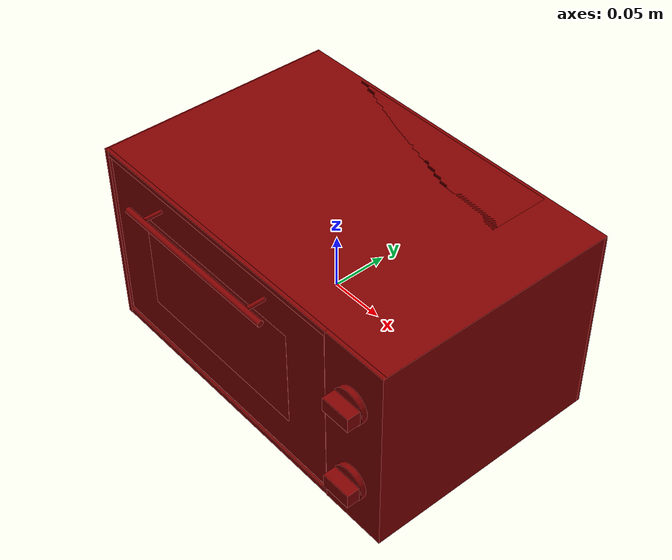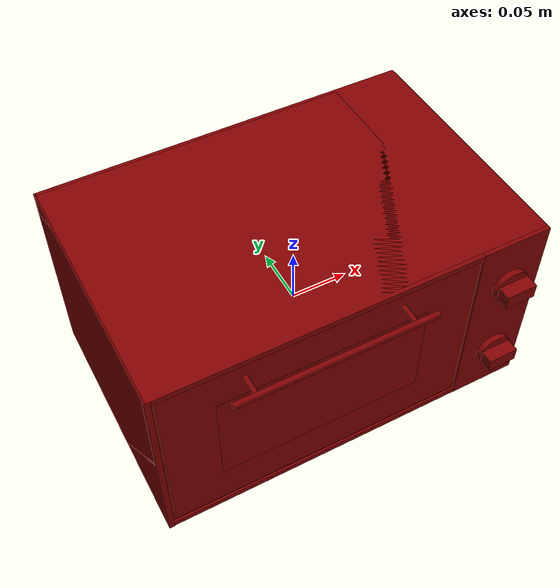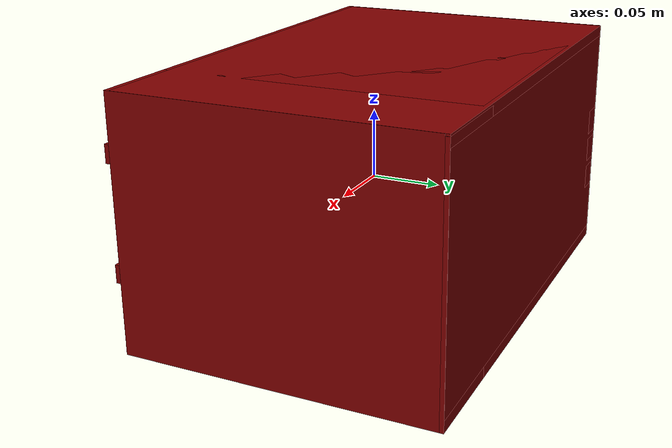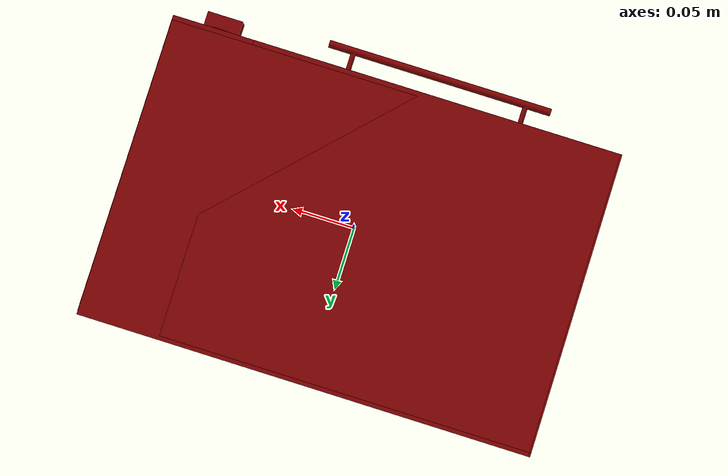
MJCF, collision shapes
<?xml version='1.0' encoding='UTF-8'?>
<mujoco model="model">
  <compiler angle="radian"/>
  <asset>
    <mesh file="visuals/Body001.obj" name="Body001_vis"/>
    <mesh file="visuals/Door001.obj" name="Door001_vis"/>
    <mesh file="visuals/Door001_Clear.obj" name="Door001_Clear_vis"/>
    <mesh file="visuals/Knob001.obj" name="Knob001_vis"/>
    <mesh file="visuals/Knob002.obj" name="Knob002_vis"/>
    <mesh file="visuals/Shelf001.obj" name="Shelf001_vis"/>
    <mesh file="visuals/Shelf002.obj" name="Shelf002_vis"/>
    <texture file="visuals/T_BC001.png" name="Body001_material" type="2d"/>
    <material name="Body001_material" rgba="1 1 1 1.0" texture="Body001_material" shininess="0.4472135901451111" specular="0.3103448502657381"/>
    <texture file="visuals/T_BC001.png" name="Door001_material" type="2d"/>
    <material name="Door001_material" rgba="1 1 1 1.0" texture="Door001_material" shininess="0.4472135901451111" specular="0.3103448502657381"/>
    <texture file="visuals/T_BC001.png" name="Door001_Clear_material" type="2d"/>
    <material name="Door001_Clear_material" rgba="1 1 1 0.699999988079071" texture="Door001_Clear_material" shininess="0.4472135901451111" specular="0.3103448502657381"/>
    <texture file="visuals/T_BC001.png" name="Knob001_material" type="2d"/>
    <material name="Knob001_material" rgba="1 1 1 1.0" texture="Knob001_material" shininess="0.4472135901451111" specular="0.3103448502657381"/>
    <texture file="visuals/T_BC001.png" name="Knob002_material" type="2d"/>
    <material name="Knob002_material" rgba="1 1 1 1.0" texture="Knob002_material" shininess="0.4472135901451111" specular="0.3103448502657381"/>
    <texture file="visuals/T_BC001.png" name="Shelf001_material" type="2d"/>
    <material name="Shelf001_material" rgba="1 1 1 1.0" texture="Shelf001_material" shininess="0.4472135901451111" specular="0.3103448502657381"/>
    <texture file="visuals/T_BC001.png" name="Shelf002_material" type="2d"/>
    <material name="Shelf002_material" rgba="1 1 1 1.0" texture="Shelf002_material" shininess="0.4472135901451111" specular="0.3103448502657381"/>
  </asset>
  <default>
    <default class="visual">
      <geom conaffinity="0" contype="0" group="1" type="mesh"/>
    </default>
    <default class="collision">
      <geom group="0" rgba="0.5 0 0 0.5"/>
    </default>
    <default class="spawn">
      <geom group="0" rgba="1 1 1 0.5" contype="0" conaffinity="0"/>
      <site group="0" rgba="1 1 1 0.5"/>
    </default>
    <default class="region">
      <geom group="1" conaffinity="0" contype="0" rgba="0 1 0 0"/>
    </default>
  </default>
  <worldbody>
    <body>
      <body name="object">
        <geom mesh="Body001_vis" type="mesh" solimp="0.998 0.998 0.001" solref="0.001 1" density="100" friction="0.95 0.3 0.1" class="visual" material="Body001_material"/>
        <geom class="collision" type="box" pos="0.0005172229721210897 0.011733900755643845 0.08691734820604324" size="0.16828076541423798 0.11101815849542618 0.005980744492262602" quat="1.0 0.0 0.0 0.0"/>
        <geom class="collision" type="box" pos="0.0005172229721210897 0.010909182950854301 -0.08161424100399017" size="0.16828112304210663 0.11184294521808624 0.006149906199425459" quat="1.0 0.0 0.0 0.0"/>
        <geom class="collision" type="box" pos="-0.16227222979068756 0.011733354069292545 0.00258427020162344" size="0.0067818136885762215 0.11101796478033066 0.09031333774328232" quat="1.0 0.0 0.0 0.0"/>
        <geom class="collision" type="box" pos="0.0005172229721210897 0.11658301204442978 0.002612464129924774" size="0.16828185319900513 0.006169580854475498 0.08218231797218323" quat="1.0 0.0 0.0 0.0"/>
        <geom class="collision" type="box" pos="0.13432499766349792 0.011733589693903923 0.001870125182904303" size="0.03472891449928284 0.11101856827735901 0.08959954977035522" quat="1.0 0.0 0.0 0.0"/>
        <geom class="collision" type="box" pos="0.10413810610771179 0.011733400635421276 -0.007304775528609753" size="0.00981373805552721 0.11101856827735901 0.00942980870604515" quat="1.0 0.0 0.0 0.0"/>
        <geom class="collision" type="box" pos="0.10373619198799133 0.011733400635421276 -0.030886605381965637" size="0.00917659793049097 0.11101873219013214 0.009429818950593472" quat="1.0 0.0 0.0 0.0"/>
        <geom class="collision" type="box" pos="0.10413810610771179 0.011733400635421276 0.0160503052175045" size="0.009813782759010792 0.11101892590522766 0.009429831057786942" quat="1.0 0.0 0.0 0.0"/>
        <geom class="collision" type="box" pos="0.10413810610771179 0.011733400635421276 0.03679776191711426" size="0.009813805110752583 0.11101909726858139 0.007049001287668943" quat="1.0 0.0 0.0 0.0"/>
        <geom class="collision" type="box" pos="-0.159526064991951 0.01173335313796997 0.03679777681827545" size="0.008752795867621899 0.11101923882961273 0.007048996165394783" quat="1.0 0.0 0.0 0.0"/>
        <geom class="collision" type="box" pos="-0.159526064991951 0.01173335313796997 0.0160503052175045" size="0.008752807043492794 0.11101941019296646 0.009429864585399628" quat="1.0 0.0 0.0 0.0"/>
        <geom class="collision" type="box" pos="-0.15914511680603027 0.01173335313796997 -0.030886605381965637" size="0.008115467615425587 0.11101960390806198 0.009429876692593098" quat="1.0 0.0 0.0 0.0"/>
        <geom class="collision" type="box" pos="-0.159526064991951 0.01173335313796997 -0.007304775528609753" size="0.008752829395234585 0.11101976782083511 0.009429886937141418" quat="1.0 0.0 0.0 0.0"/>
        <geom class="collision" type="cylinder" pos="-0.14149688184261322 -0.0778157040476799 -0.08931057900190353" size="0.011068589985370636 0.0035875211469829082" quat="1.0 0.0 0.0 0.0"/>
        <geom class="collision" type="cylinder" pos="0.13824091851711273 -0.0778157040476799 -0.08931057900190353" size="0.011068589985370636 0.0035875211469829082" quat="1.0 0.0 0.0 0.0"/>
        <geom class="collision" type="cylinder" pos="0.13824091851711273 0.09523653239011765 -0.08931057900190353" size="0.011068589985370636 0.0035875211469829082" quat="1.0 0.0 0.0 0.0"/>
        <geom class="collision" type="cylinder" pos="-0.14149688184261322 0.09523653239011765 -0.08931057900190353" size="0.011068589985370636 0.0035875211469829082" quat="1.0 0.0 0.0 0.0"/>
        <geom class="collision" type="box" pos="0.13830217719078064 0.00851267110556364 0.0025834222324192524" size="0.03075181506574154 0.11128450185060501 0.09031447023153305" quat="1.0 0.0 0.0 0.0"/>
        <geom class="collision" type="box" pos="-0.02991250529885292 0.008459964767098427 0.090357206761837" size="0.13785697519779205 0.11128468066453934 0.0025408905930817127" quat="1.0 0.0 0.0 0.0"/>
        <geom class="collision" type="box" pos="-0.029912535101175308 0.008459964767098427 -0.08453040570020676" size="0.13785719871520996 0.11128485947847366 0.0027101358864456415" quat="1.0 0.0 0.0 0.0"/>
        <geom class="collision" type="box" pos="-0.16665823757648468 0.008459950797259808 0.002452221466228366" size="0.00239580194465816 0.11128504574298859 0.09044574201107025" quat="1.0 0.0 0.0 0.0"/>
        <body name="Door001">
          <joint axis="1.0 0.0 0.0" pos="-0.028201844543218613 -0.10177598148584366 -0.08069298416376114" limited="true" name="Door001_joint" range="0.0 1.5707963267948966" type="hinge" damping="1" frictionloss="1" armature=".01" stiffness="-1" springref="1"/>
          <geom mesh="Door001_vis" type="mesh" solimp="0.998 0.998 0.001" solref="0.001 1" density="100" friction="0.95 0.3 0.1" class="visual" material="Door001_material"/>
          <geom class="collision" type="box" pos="-0.028077220544219017 -0.10103628039360046 0.0035652078222483397" size="0.13400645554065704 0.0006838886765763164 0.08300488442182541" quat="1.0 0.0 0.0 0.0"/>
          <geom class="collision" type="cylinder" pos="0.03781110793352127 -0.10997308790683746 0.07306898385286331" size="0.0018733302131295204 0.008421883918344975" quat="0.7071068286895752 0.7071067690849304 -1.5700924318127872e-16 -5.9269340452702814e-24"/>
          <geom class="collision" type="cylinder" pos="-0.09412231296300888 -0.10997308790683746 0.07306898385286331" size="0.0018733302131295204 0.008421883918344975" quat="0.7071068286895752 0.7071067690849304 -1.5700924318127872e-16 -5.9269340452702814e-24"/>
          <geom class="collision" type="cylinder" pos="-0.028101181611418724 -0.1200672909617424 0.07306898385286331" size="0.0027525743935257196 0.08489397913217545" quat="0.5 0.4999999701976776 0.5 0.5"/>
          <body name="Door001_Clear">
            <geom mesh="Door001_Clear_vis" type="mesh" solimp="0.998 0.998 0.001" solref="0.001 1" density="100" friction="0.95 0.3 0.1" class="visual" material="Door001_Clear_material"/>
            <geom class="collision" type="box" pos="-0.028270386159420013 -0.10112984478473663 0.00533221336081624" size="0.08991163969039917 0.0007118582725524902 0.047050923109054565" quat="1.0 0.0 0.0 0.0"/>
          </body>
        </body>
        <body name="Knob001">
          <joint axis="0.0 1.0 0.0" pos="0.13861218094825745 -0.10677272081375122 0.04522187262773514" limited="true" name="Knob001_joint" range="0.0 4.363323129985823" type="hinge" damping="0.05" armature="0.001"/>
          <geom mesh="Knob001_vis" type="mesh" solimp="0.998 0.998 0.001" solref="0.001 1" density="100" friction="0.95 0.3 0.1" class="visual" material="Knob001_material"/>
          <geom class="collision" type="cylinder" pos="0.13875286281108856 -0.10590711981058121 0.045270584523677826" size="0.015636349096894264 0.002507224678993225" quat="0.7071068286895752 0.7071067690849304 1.5700924318127872e-16 5.9269340452702814e-24"/>
          <geom class="collision" type="box" pos="0.1387847512960434 -0.11412039399147034 0.04518483579158783" size="0.013723215088248253 0.005964692682027817 0.006653157994151115" quat="1.0 0.0 0.0 0.0"/>
        </body>
        <body name="Knob002">
          <joint axis="0.0 1.0 0.0" pos="0.13861218094825745 -0.10677272081375122 -0.039362192153930664" limited="true" name="Knob002_joint" range="0.0 4.71238898038469" type="hinge" damping="0.05" armature="0.001"/>
          <geom mesh="Knob002_vis" type="mesh" solimp="0.998 0.998 0.001" solref="0.001 1" density="100" friction="0.95 0.3 0.1" class="visual" material="Knob002_material"/>
          <geom class="collision" type="cylinder" pos="0.13875286281108856 -0.10590711981058121 -0.039193108677864075" size="0.015636349096894264 0.002507224678993225" quat="0.7071068286895752 0.7071067690849304 1.5700924318127872e-16 5.9269340452702814e-24"/>
          <geom class="collision" type="box" pos="0.1387847512960434 -0.11412039399147034 -0.03927885740995407" size="0.013723215088248253 0.005964692682027817 0.006653157994151115" quat="1.0 0.0 0.0 0.0"/>
        </body>
        <body name="Shelf001">
          <joint axis="0.0 -1.0 0.0" pos="-0.02817477658390999 -0.0008770496933721006 0.028005607426166534" limited="true" name="Shelf001_joint" range="0.0 0.13" type="slide" damping="1" frictionloss="1" armature=".01" stiffness="0.05"/>
          <geom mesh="Shelf001_vis" type="mesh" solimp="0.998 0.998 0.001" solref="0.001 1" density="100" friction="0.95 0.3 0.1" class="visual" material="Shelf001_material"/>
          <geom class="collision" type="box" pos="-0.028249427676200867 -0.0006852085352875292 0.028002247214317322" size="0.12573044002056122 0.08438935875892639 0.0015004761517047882" quat="1.0 0.0 0.0 0.0"/>
        </body>
        <body name="Shelf002">
          <joint axis="0.0 -1.0 0.0" pos="-0.02817477658390999 -0.0008770496933721006 -0.018962165340781212" limited="true" name="Shelf002_joint" range="0.0 0.13" type="slide" damping="1" frictionloss="1" armature=".01" stiffness="0.05"/>
          <geom mesh="Shelf002_vis" type="mesh" solimp="0.998 0.998 0.001" solref="0.001 1" density="100" friction="0.95 0.3 0.1" class="visual" material="Shelf002_material"/>
          <geom class="collision" type="box" pos="-0.028249427676200867 -0.0006852085352875292 -0.018969889730215073" size="0.12573044002056122 0.08438935875892639 0.0015004761517047882" quat="1.0 0.0 0.0 0.0"/>
        </body>
        <geom class="region" name="reg_main" type="box" pos="3.725290298461914e-09 0.009753149002790451 0.0" size="0.16905400156974792 0.11299946904182434 0.09289811551570892"/>
        <geom class="region" name="reg_int" type="box" pos="-0.02815486490726471 0.007597822695970535 0.0027844123542308807" size="0.1278894543647766 0.10282708331942558 0.079514030367136"/>
      </body>
    </body>
  </worldbody>
  <actuator>
    <motor name="Door001_joint_actuator" joint="Door001_joint" gear="50"/>
    <motor name="Knob001_joint_actuator" joint="Knob001_joint" gear="50"/>
    <motor name="Knob002_joint_actuator" joint="Knob002_joint" gear="50"/>
    <motor name="Shelf001_joint_actuator" joint="Shelf001_joint" gear="50"/>
    <motor name="Shelf002_joint_actuator" joint="Shelf002_joint" gear="50"/>
  </actuator>
</mujoco>
